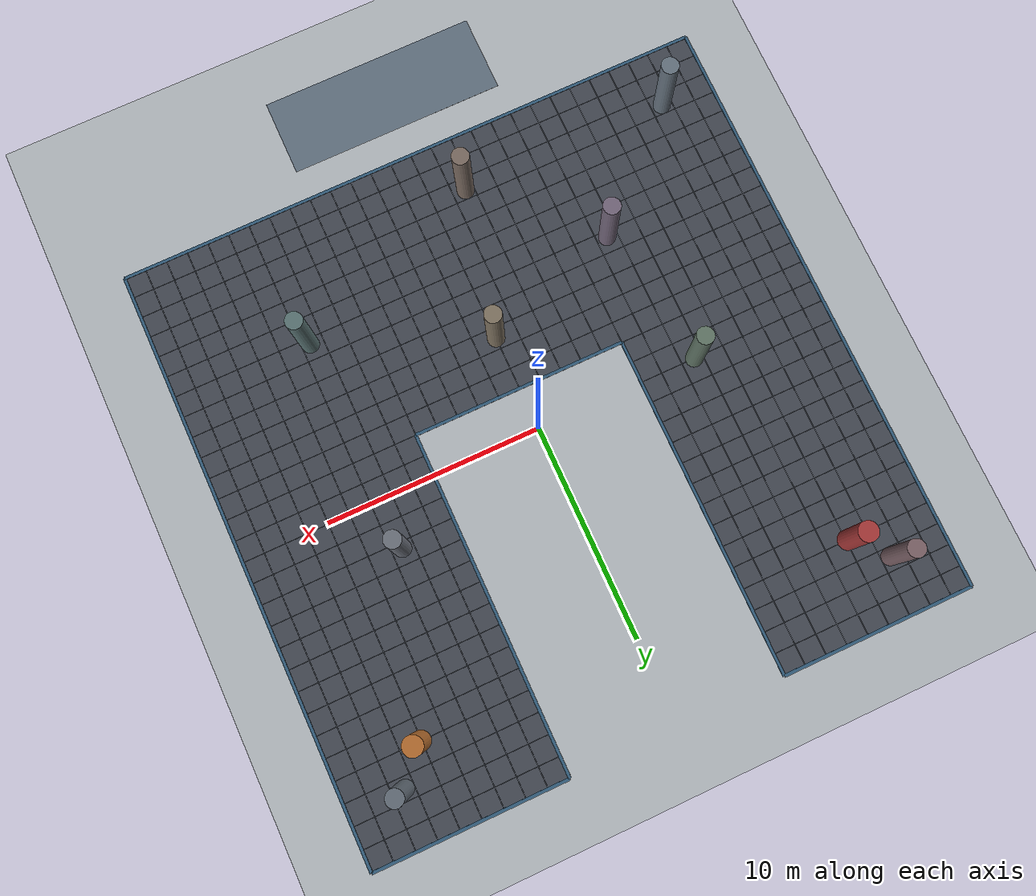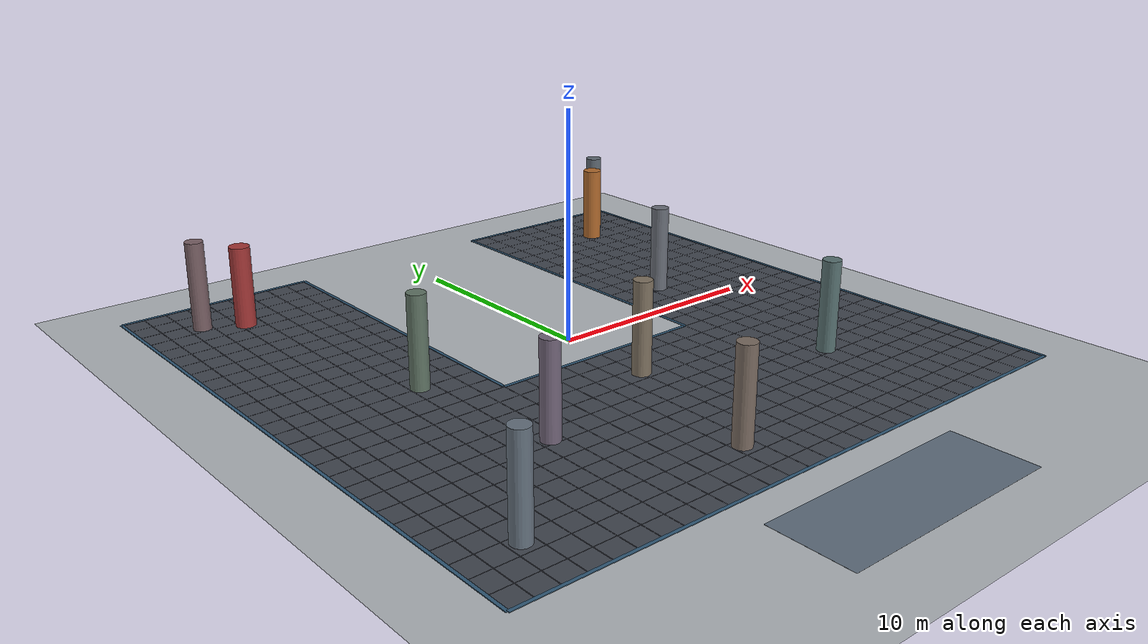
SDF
<?xml version="1.0" ?>
<sdf version="1.8">
  <world name="swarm_world">
    <!-- SPEEDUP SIMULATION: max_step_size=0.001 (1000Hz stable physics) & real_time_factor=1.0 -->
    <physics name="fast_physics" type="ode">
      <max_step_size>0.001</max_step_size>
      <real_time_factor>1.0</real_time_factor>
    </physics>

    <!-- SCENE CONFIG: Muted Architectural Lighting & Background -->
    <scene>
      <ambient>0.62 0.62 0.65 1.0</ambient>
      <background>0.78 0.80 0.83 1.0</background>
      <shadows>true</shadows>
      <grid>false</grid>
    </scene>

    <!-- PLUGIN INTI GAZEBO HARMONIC -->
    <plugin
      filename="gz-sim-physics-system"
      name="gz::sim::systems::Physics">
    </plugin>
    <plugin
      filename="gz-sim-user-commands-system"
      name="gz::sim::systems::UserCommands">
    </plugin>
    <plugin
      filename="gz-sim-scene-broadcaster-system"
      name="gz::sim::systems::SceneBroadcaster">
    </plugin>
    <plugin
      filename="gz-sim-sensors-system"
      name="gz::sim::systems::Sensors">
      <render_engine>ogre2</render_engine>
    </plugin>
    <plugin
      filename="gz-sim-wind-effects-system"
      name="gz::sim::systems::WindEffects">
      <force_approximation_scaling_factor>0.25</force_approximation_scaling_factor>
    </plugin>

    <!-- MATAHARI (SUN) - Soft Balanced Illumination -->
    <light type="directional" name="sun">
      <cast_shadows>true</cast_shadows>
      <pose>0 0 30 0 0 0</pose>
      <diffuse>0.85 0.85 0.87 1</diffuse>
      <specular>0.2 0.2 0.2 1</specular>
      <attenuation>
        <range>1000</range>
        <constant>0.9</constant>
        <linear>0.01</linear>
        <quadratic>0.001</quadratic>
      </attenuation>
      <direction>-0.4 0.2 -0.9</direction>
    </light>

    <!-- LANTAI LUAR (NEUTRAL MATTE CONCRETE EXTERIOR) -->
    <model name="ground_plane">
      <static>true</static>
      <link name="link">
        <collision name="collision">
          <geometry>
            <plane>
              <normal>0 0 1</normal>
              <size>100 100</size>
            </plane>
          </geometry>
        </collision>
        <visual name="visual">
          <geometry>
            <plane>
              <normal>0 0 1</normal>
              <size>100 100</size>
            </plane>
          </geometry>
          <material>
            <ambient>0.70 0.72 0.74 1.0</ambient>
            <diffuse>0.70 0.72 0.74 1.0</diffuse>
            <specular>0.1 0.1 0.1 1.0</specular>
          </material>
        </visual>
      </link>
    </model>

    <!-- GUI TOP-VIEW CAMERA PRESET -->
    <gui fullscreen="0">
      <camera name="user_camera">
        <pose>0.0 0.0 38.0 0.0 1.5708 1.5708</pose>
        <view_controller>orbit</view_controller>
      </camera>
    </gui>

    <!-- STAGING PAD AREA (LANDASAN AWAL 7 DRONE DI Y = -18m) -->
    <model name="staging_pad">
      <static>true</static>
      <link name="pad_link">
        <visual name="pad_v">
          <pose>0.0 -17.25 0.003 0 0 0</pose>
          <geometry><box><size>10.0 3.5 0.005</size></box></geometry>
          <material>
            <ambient>0.26 0.28 0.32 1.0</ambient>
            <diffuse>0.26 0.28 0.32 1.0</diffuse>
          </material>
        </visual>
        <visual name="pad_border">
          <pose>0.0 -17.25 0.005 0 0 0</pose>
          <geometry><box><size>10.1 3.6 0.003</size></box></geometry>
          <material>
            <ambient>0.38 0.44 0.50 1.0</ambient>
            <diffuse>0.38 0.44 0.50 1.0</diffuse>
          </material>
        </visual>
      </link>
    </model>
    <!-- VISUAL LANTAI ARENA & BORDER WILAYAH U_SHAPE                           -->
    <model name="visual_region_floor_u_shape">
      <static>true</static>
      <link name="floor_link">
        <visual name="floor_box_0">
          <pose>0.0000 -8.0000 0.003 0 0 0</pose>
          <geometry><box><size>28.0000 12.0000 0.005</size></box></geometry>
          <material>
            <ambient>0.26 0.28 0.32 1.0</ambient>
            <diffuse>0.26 0.28 0.32 1.0</diffuse>
            <specular>0.15 0.15 0.15 1.0</specular>
          </material>
        </visual>
        <visual name="floor_box_1">
          <pose>-9.5000 6.0000 0.003 0 0 0</pose>
          <geometry><box><size>9.0000 16.0000 0.005</size></box></geometry>
          <material>
            <ambient>0.26 0.28 0.32 1.0</ambient>
            <diffuse>0.26 0.28 0.32 1.0</diffuse>
            <specular>0.15 0.15 0.15 1.0</specular>
          </material>
        </visual>
        <visual name="floor_box_2">
          <pose>9.5000 6.0000 0.003 0 0 0</pose>
          <geometry><box><size>9.0000 16.0000 0.005</size></box></geometry>
          <material>
            <ambient>0.26 0.28 0.32 1.0</ambient>
            <diffuse>0.26 0.28 0.32 1.0</diffuse>
            <specular>0.15 0.15 0.15 1.0</specular>
          </material>
        </visual>
        <visual name="grid_v_0">
          <pose>-14.00 -8.0000 0.005 0 0 0</pose>
          <geometry><box><size>0.025 12.0000 0.003</size></box></geometry>
          <material>
            <ambient>0.33 0.35 0.39 1.0</ambient>
            <diffuse>0.33 0.35 0.39 1.0</diffuse>
          </material>
        </visual>
        <visual name="grid_v_1">
          <pose>-13.00 -8.0000 0.005 0 0 0</pose>
          <geometry><box><size>0.025 12.0000 0.003</size></box></geometry>
          <material>
            <ambient>0.33 0.35 0.39 1.0</ambient>
            <diffuse>0.33 0.35 0.39 1.0</diffuse>
          </material>
        </visual>
        <visual name="grid_v_2">
          <pose>-12.00 -8.0000 0.005 0 0 0</pose>
          <geometry><box><size>0.025 12.0000 0.003</size></box></geometry>
          <material>
            <ambient>0.33 0.35 0.39 1.0</ambient>
            <diffuse>0.33 0.35 0.39 1.0</diffuse>
          </material>
        </visual>
        <visual name="grid_v_3">
          <pose>-11.00 -8.0000 0.005 0 0 0</pose>
          <geometry><box><size>0.025 12.0000 0.003</size></box></geometry>
          <material>
            <ambient>0.33 0.35 0.39 1.0</ambient>
            <diffuse>0.33 0.35 0.39 1.0</diffuse>
          </material>
        </visual>
        <visual name="grid_v_4">
          <pose>-10.00 -8.0000 0.005 0 0 0</pose>
          <geometry><box><size>0.025 12.0000 0.003</size></box></geometry>
          <material>
            <ambient>0.33 0.35 0.39 1.0</ambient>
            <diffuse>0.33 0.35 0.39 1.0</diffuse>
          </material>
        </visual>
        <visual name="grid_v_5">
          <pose>-9.00 -8.0000 0.005 0 0 0</pose>
          <geometry><box><size>0.025 12.0000 0.003</size></box></geometry>
          <material>
            <ambient>0.33 0.35 0.39 1.0</ambient>
            <diffuse>0.33 0.35 0.39 1.0</diffuse>
          </material>
        </visual>
        <visual name="grid_v_6">
          <pose>-8.00 -8.0000 0.005 0 0 0</pose>
          <geometry><box><size>0.025 12.0000 0.003</size></box></geometry>
          <material>
            <ambient>0.33 0.35 0.39 1.0</ambient>
            <diffuse>0.33 0.35 0.39 1.0</diffuse>
          </material>
        </visual>
        <visual name="grid_v_7">
          <pose>-7.00 -8.0000 0.005 0 0 0</pose>
          <geometry><box><size>0.025 12.0000 0.003</size></box></geometry>
          <material>
            <ambient>0.33 0.35 0.39 1.0</ambient>
            <diffuse>0.33 0.35 0.39 1.0</diffuse>
          </material>
        </visual>
        <visual name="grid_v_8">
          <pose>-6.00 -8.0000 0.005 0 0 0</pose>
          <geometry><box><size>0.025 12.0000 0.003</size></box></geometry>
          <material>
            <ambient>0.33 0.35 0.39 1.0</ambient>
            <diffuse>0.33 0.35 0.39 1.0</diffuse>
          </material>
        </visual>
        <visual name="grid_v_9">
          <pose>-5.00 -8.0000 0.005 0 0 0</pose>
          <geometry><box><size>0.025 12.0000 0.003</size></box></geometry>
          <material>
            <ambient>0.33 0.35 0.39 1.0</ambient>
            <diffuse>0.33 0.35 0.39 1.0</diffuse>
          </material>
        </visual>
        <visual name="grid_v_10">
          <pose>-4.00 -8.0000 0.005 0 0 0</pose>
          <geometry><box><size>0.025 12.0000 0.003</size></box></geometry>
          <material>
            <ambient>0.33 0.35 0.39 1.0</ambient>
            <diffuse>0.33 0.35 0.39 1.0</diffuse>
          </material>
        </visual>
        <visual name="grid_v_11">
          <pose>-3.00 -8.0000 0.005 0 0 0</pose>
          <geometry><box><size>0.025 12.0000 0.003</size></box></geometry>
          <material>
            <ambient>0.33 0.35 0.39 1.0</ambient>
            <diffuse>0.33 0.35 0.39 1.0</diffuse>
          </material>
        </visual>
        <visual name="grid_v_12">
          <pose>-2.00 -8.0000 0.005 0 0 0</pose>
          <geometry><box><size>0.025 12.0000 0.003</size></box></geometry>
          <material>
            <ambient>0.33 0.35 0.39 1.0</ambient>
            <diffuse>0.33 0.35 0.39 1.0</diffuse>
          </material>
        </visual>
        <visual name="grid_v_13">
          <pose>-1.00 -8.0000 0.005 0 0 0</pose>
          <geometry><box><size>0.025 12.0000 0.003</size></box></geometry>
          <material>
            <ambient>0.33 0.35 0.39 1.0</ambient>
            <diffuse>0.33 0.35 0.39 1.0</diffuse>
          </material>
        </visual>
        <visual name="grid_v_14">
          <pose>0.00 -8.0000 0.005 0 0 0</pose>
          <geometry><box><size>0.025 12.0000 0.003</size></box></geometry>
          <material>
            <ambient>0.33 0.35 0.39 1.0</ambient>
            <diffuse>0.33 0.35 0.39 1.0</diffuse>
          </material>
        </visual>
        <visual name="grid_v_15">
          <pose>1.00 -8.0000 0.005 0 0 0</pose>
          <geometry><box><size>0.025 12.0000 0.003</size></box></geometry>
          <material>
            <ambient>0.33 0.35 0.39 1.0</ambient>
            <diffuse>0.33 0.35 0.39 1.0</diffuse>
          </material>
        </visual>
        <visual name="grid_v_16">
          <pose>2.00 -8.0000 0.005 0 0 0</pose>
          <geometry><box><size>0.025 12.0000 0.003</size></box></geometry>
          <material>
            <ambient>0.33 0.35 0.39 1.0</ambient>
            <diffuse>0.33 0.35 0.39 1.0</diffuse>
          </material>
        </visual>
        <visual name="grid_v_17">
          <pose>3.00 -8.0000 0.005 0 0 0</pose>
          <geometry><box><size>0.025 12.0000 0.003</size></box></geometry>
          <material>
            <ambient>0.33 0.35 0.39 1.0</ambient>
            <diffuse>0.33 0.35 0.39 1.0</diffuse>
          </material>
        </visual>
        <visual name="grid_v_18">
          <pose>4.00 -8.0000 0.005 0 0 0</pose>
          <geometry><box><size>0.025 12.0000 0.003</size></box></geometry>
          <material>
            <ambient>0.33 0.35 0.39 1.0</ambient>
            <diffuse>0.33 0.35 0.39 1.0</diffuse>
          </material>
        </visual>
        <visual name="grid_v_19">
          <pose>5.00 -8.0000 0.005 0 0 0</pose>
          <geometry><box><size>0.025 12.0000 0.003</size></box></geometry>
          <material>
            <ambient>0.33 0.35 0.39 1.0</ambient>
            <diffuse>0.33 0.35 0.39 1.0</diffuse>
          </material>
        </visual>
        <visual name="grid_v_20">
          <pose>6.00 -8.0000 0.005 0 0 0</pose>
          <geometry><box><size>0.025 12.0000 0.003</size></box></geometry>
          <material>
            <ambient>0.33 0.35 0.39 1.0</ambient>
            <diffuse>0.33 0.35 0.39 1.0</diffuse>
          </material>
        </visual>
        <visual name="grid_v_21">
          <pose>7.00 -8.0000 0.005 0 0 0</pose>
          <geometry><box><size>0.025 12.0000 0.003</size></box></geometry>
          <material>
            <ambient>0.33 0.35 0.39 1.0</ambient>
            <diffuse>0.33 0.35 0.39 1.0</diffuse>
          </material>
        </visual>
        <visual name="grid_v_22">
          <pose>8.00 -8.0000 0.005 0 0 0</pose>
          <geometry><box><size>0.025 12.0000 0.003</size></box></geometry>
          <material>
            <ambient>0.33 0.35 0.39 1.0</ambient>
            <diffuse>0.33 0.35 0.39 1.0</diffuse>
          </material>
        </visual>
        <visual name="grid_v_23">
          <pose>9.00 -8.0000 0.005 0 0 0</pose>
          <geometry><box><size>0.025 12.0000 0.003</size></box></geometry>
          <material>
            <ambient>0.33 0.35 0.39 1.0</ambient>
            <diffuse>0.33 0.35 0.39 1.0</diffuse>
          </material>
        </visual>
        <visual name="grid_v_24">
          <pose>10.00 -8.0000 0.005 0 0 0</pose>
          <geometry><box><size>0.025 12.0000 0.003</size></box></geometry>
          <material>
            <ambient>0.33 0.35 0.39 1.0</ambient>
            <diffuse>0.33 0.35 0.39 1.0</diffuse>
          </material>
        </visual>
        <visual name="grid_v_25">
          <pose>11.00 -8.0000 0.005 0 0 0</pose>
          <geometry><box><size>0.025 12.0000 0.003</size></box></geometry>
          <material>
            <ambient>0.33 0.35 0.39 1.0</ambient>
            <diffuse>0.33 0.35 0.39 1.0</diffuse>
          </material>
        </visual>
        <visual name="grid_v_26">
          <pose>12.00 -8.0000 0.005 0 0 0</pose>
          <geometry><box><size>0.025 12.0000 0.003</size></box></geometry>
          <material>
            <ambient>0.33 0.35 0.39 1.0</ambient>
            <diffuse>0.33 0.35 0.39 1.0</diffuse>
          </material>
        </visual>
        <visual name="grid_v_27">
          <pose>13.00 -8.0000 0.005 0 0 0</pose>
          <geometry><box><size>0.025 12.0000 0.003</size></box></geometry>
          <material>
            <ambient>0.33 0.35 0.39 1.0</ambient>
            <diffuse>0.33 0.35 0.39 1.0</diffuse>
          </material>
        </visual>
        <visual name="grid_v_28">
          <pose>14.00 -8.0000 0.005 0 0 0</pose>
          <geometry><box><size>0.025 12.0000 0.003</size></box></geometry>
          <material>
            <ambient>0.33 0.35 0.39 1.0</ambient>
            <diffuse>0.33 0.35 0.39 1.0</diffuse>
          </material>
        </visual>
        <visual name="grid_h_29">
          <pose>0.0000 -14.00 0.005 0 0 0</pose>
          <geometry><box><size>28.0000 0.025 0.003</size></box></geometry>
          <material>
            <ambient>0.33 0.35 0.39 1.0</ambient>
            <diffuse>0.33 0.35 0.39 1.0</diffuse>
          </material>
        </visual>
        <visual name="grid_h_30">
          <pose>0.0000 -13.00 0.005 0 0 0</pose>
          <geometry><box><size>28.0000 0.025 0.003</size></box></geometry>
          <material>
            <ambient>0.33 0.35 0.39 1.0</ambient>
            <diffuse>0.33 0.35 0.39 1.0</diffuse>
          </material>
        </visual>
        <visual name="grid_h_31">
          <pose>0.0000 -12.00 0.005 0 0 0</pose>
          <geometry><box><size>28.0000 0.025 0.003</size></box></geometry>
          <material>
            <ambient>0.33 0.35 0.39 1.0</ambient>
            <diffuse>0.33 0.35 0.39 1.0</diffuse>
          </material>
        </visual>
        <visual name="grid_h_32">
          <pose>0.0000 -11.00 0.005 0 0 0</pose>
          <geometry><box><size>28.0000 0.025 0.003</size></box></geometry>
          <material>
            <ambient>0.33 0.35 0.39 1.0</ambient>
            <diffuse>0.33 0.35 0.39 1.0</diffuse>
          </material>
        </visual>
        <visual name="grid_h_33">
          <pose>0.0000 -10.00 0.005 0 0 0</pose>
          <geometry><box><size>28.0000 0.025 0.003</size></box></geometry>
          <material>
            <ambient>0.33 0.35 0.39 1.0</ambient>
            <diffuse>0.33 0.35 0.39 1.0</diffuse>
          </material>
        </visual>
        <visual name="grid_h_34">
          <pose>0.0000 -9.00 0.005 0 0 0</pose>
          <geometry><box><size>28.0000 0.025 0.003</size></box></geometry>
          <material>
            <ambient>0.33 0.35 0.39 1.0</ambient>
            <diffuse>0.33 0.35 0.39 1.0</diffuse>
          </material>
        </visual>
        <visual name="grid_h_35">
          <pose>0.0000 -8.00 0.005 0 0 0</pose>
          <geometry><box><size>28.0000 0.025 0.003</size></box></geometry>
          <material>
            <ambient>0.33 0.35 0.39 1.0</ambient>
            <diffuse>0.33 0.35 0.39 1.0</diffuse>
          </material>
        </visual>
        <visual name="grid_h_36">
          <pose>0.0000 -7.00 0.005 0 0 0</pose>
          <geometry><box><size>28.0000 0.025 0.003</size></box></geometry>
          <material>
            <ambient>0.33 0.35 0.39 1.0</ambient>
            <diffuse>0.33 0.35 0.39 1.0</diffuse>
          </material>
        </visual>
        <visual name="grid_h_37">
          <pose>0.0000 -6.00 0.005 0 0 0</pose>
          <geometry><box><size>28.0000 0.025 0.003</size></box></geometry>
          <material>
            <ambient>0.33 0.35 0.39 1.0</ambient>
            <diffuse>0.33 0.35 0.39 1.0</diffuse>
          </material>
        </visual>
        <visual name="grid_h_38">
          <pose>0.0000 -5.00 0.005 0 0 0</pose>
          <geometry><box><size>28.0000 0.025 0.003</size></box></geometry>
          <material>
            <ambient>0.33 0.35 0.39 1.0</ambient>
            <diffuse>0.33 0.35 0.39 1.0</diffuse>
          </material>
        </visual>
        <visual name="grid_h_39">
          <pose>0.0000 -4.00 0.005 0 0 0</pose>
          <geometry><box><size>28.0000 0.025 0.003</size></box></geometry>
          <material>
            <ambient>0.33 0.35 0.39 1.0</ambient>
            <diffuse>0.33 0.35 0.39 1.0</diffuse>
          </material>
        </visual>
        <visual name="grid_h_40">
          <pose>0.0000 -3.00 0.005 0 0 0</pose>
          <geometry><box><size>28.0000 0.025 0.003</size></box></geometry>
          <material>
            <ambient>0.33 0.35 0.39 1.0</ambient>
            <diffuse>0.33 0.35 0.39 1.0</diffuse>
          </material>
        </visual>
        <visual name="grid_h_41">
          <pose>0.0000 -2.00 0.005 0 0 0</pose>
          <geometry><box><size>28.0000 0.025 0.003</size></box></geometry>
          <material>
            <ambient>0.33 0.35 0.39 1.0</ambient>
            <diffuse>0.33 0.35 0.39 1.0</diffuse>
          </material>
        </visual>
        <visual name="grid_v_42">
          <pose>-14.00 6.0000 0.005 0 0 0</pose>
          <geometry><box><size>0.025 16.0000 0.003</size></box></geometry>
          <material>
            <ambient>0.33 0.35 0.39 1.0</ambient>
            <diffuse>0.33 0.35 0.39 1.0</diffuse>
          </material>
        </visual>
        <visual name="grid_v_43">
          <pose>-13.00 6.0000 0.005 0 0 0</pose>
          <geometry><box><size>0.025 16.0000 0.003</size></box></geometry>
          <material>
            <ambient>0.33 0.35 0.39 1.0</ambient>
            <diffuse>0.33 0.35 0.39 1.0</diffuse>
          </material>
        </visual>
        <visual name="grid_v_44">
          <pose>-12.00 6.0000 0.005 0 0 0</pose>
          <geometry><box><size>0.025 16.0000 0.003</size></box></geometry>
          <material>
            <ambient>0.33 0.35 0.39 1.0</ambient>
            <diffuse>0.33 0.35 0.39 1.0</diffuse>
          </material>
        </visual>
        <visual name="grid_v_45">
          <pose>-11.00 6.0000 0.005 0 0 0</pose>
          <geometry><box><size>0.025 16.0000 0.003</size></box></geometry>
          <material>
            <ambient>0.33 0.35 0.39 1.0</ambient>
            <diffuse>0.33 0.35 0.39 1.0</diffuse>
          </material>
        </visual>
        <visual name="grid_v_46">
          <pose>-10.00 6.0000 0.005 0 0 0</pose>
          <geometry><box><size>0.025 16.0000 0.003</size></box></geometry>
          <material>
            <ambient>0.33 0.35 0.39 1.0</ambient>
            <diffuse>0.33 0.35 0.39 1.0</diffuse>
          </material>
        </visual>
        <visual name="grid_v_47">
          <pose>-9.00 6.0000 0.005 0 0 0</pose>
          <geometry><box><size>0.025 16.0000 0.003</size></box></geometry>
          <material>
            <ambient>0.33 0.35 0.39 1.0</ambient>
            <diffuse>0.33 0.35 0.39 1.0</diffuse>
          </material>
        </visual>
        <visual name="grid_v_48">
          <pose>-8.00 6.0000 0.005 0 0 0</pose>
          <geometry><box><size>0.025 16.0000 0.003</size></box></geometry>
          <material>
            <ambient>0.33 0.35 0.39 1.0</ambient>
            <diffuse>0.33 0.35 0.39 1.0</diffuse>
          </material>
        </visual>
        <visual name="grid_v_49">
          <pose>-7.00 6.0000 0.005 0 0 0</pose>
          <geometry><box><size>0.025 16.0000 0.003</size></box></geometry>
          <material>
            <ambient>0.33 0.35 0.39 1.0</ambient>
            <diffuse>0.33 0.35 0.39 1.0</diffuse>
          </material>
        </visual>
        <visual name="grid_v_50">
          <pose>-6.00 6.0000 0.005 0 0 0</pose>
          <geometry><box><size>0.025 16.0000 0.003</size></box></geometry>
          <material>
            <ambient>0.33 0.35 0.39 1.0</ambient>
            <diffuse>0.33 0.35 0.39 1.0</diffuse>
          </material>
        </visual>
        <visual name="grid_v_51">
          <pose>-5.00 6.0000 0.005 0 0 0</pose>
          <geometry><box><size>0.025 16.0000 0.003</size></box></geometry>
          <material>
            <ambient>0.33 0.35 0.39 1.0</ambient>
            <diffuse>0.33 0.35 0.39 1.0</diffuse>
          </material>
        </visual>
        <visual name="grid_h_52">
          <pose>-9.5000 -2.00 0.005 0 0 0</pose>
          <geometry><box><size>9.0000 0.025 0.003</size></box></geometry>
          <material>
            <ambient>0.33 0.35 0.39 1.0</ambient>
            <diffuse>0.33 0.35 0.39 1.0</diffuse>
          </material>
        </visual>
        <visual name="grid_h_53">
          <pose>-9.5000 -1.00 0.005 0 0 0</pose>
          <geometry><box><size>9.0000 0.025 0.003</size></box></geometry>
          <material>
            <ambient>0.33 0.35 0.39 1.0</ambient>
            <diffuse>0.33 0.35 0.39 1.0</diffuse>
          </material>
        </visual>
        <visual name="grid_h_54">
          <pose>-9.5000 0.00 0.005 0 0 0</pose>
          <geometry><box><size>9.0000 0.025 0.003</size></box></geometry>
          <material>
            <ambient>0.33 0.35 0.39 1.0</ambient>
            <diffuse>0.33 0.35 0.39 1.0</diffuse>
          </material>
        </visual>
        <visual name="grid_h_55">
          <pose>-9.5000 1.00 0.005 0 0 0</pose>
          <geometry><box><size>9.0000 0.025 0.003</size></box></geometry>
          <material>
            <ambient>0.33 0.35 0.39 1.0</ambient>
            <diffuse>0.33 0.35 0.39 1.0</diffuse>
          </material>
        </visual>
        <visual name="grid_h_56">
          <pose>-9.5000 2.00 0.005 0 0 0</pose>
          <geometry><box><size>9.0000 0.025 0.003</size></box></geometry>
          <material>
            <ambient>0.33 0.35 0.39 1.0</ambient>
            <diffuse>0.33 0.35 0.39 1.0</diffuse>
          </material>
        </visual>
        <visual name="grid_h_57">
          <pose>-9.5000 3.00 0.005 0 0 0</pose>
          <geometry><box><size>9.0000 0.025 0.003</size></box></geometry>
          <material>
            <ambient>0.33 0.35 0.39 1.0</ambient>
            <diffuse>0.33 0.35 0.39 1.0</diffuse>
          </material>
        </visual>
        <visual name="grid_h_58">
          <pose>-9.5000 4.00 0.005 0 0 0</pose>
          <geometry><box><size>9.0000 0.025 0.003</size></box></geometry>
          <material>
            <ambient>0.33 0.35 0.39 1.0</ambient>
            <diffuse>0.33 0.35 0.39 1.0</diffuse>
          </material>
        </visual>
        <visual name="grid_h_59">
          <pose>-9.5000 5.00 0.005 0 0 0</pose>
          <geometry><box><size>9.0000 0.025 0.003</size></box></geometry>
          <material>
            <ambient>0.33 0.35 0.39 1.0</ambient>
            <diffuse>0.33 0.35 0.39 1.0</diffuse>
          </material>
        </visual>
        <visual name="grid_h_60">
          <pose>-9.5000 6.00 0.005 0 0 0</pose>
          <geometry><box><size>9.0000 0.025 0.003</size></box></geometry>
          <material>
            <ambient>0.33 0.35 0.39 1.0</ambient>
            <diffuse>0.33 0.35 0.39 1.0</diffuse>
          </material>
        </visual>
        <visual name="grid_h_61">
          <pose>-9.5000 7.00 0.005 0 0 0</pose>
          <geometry><box><size>9.0000 0.025 0.003</size></box></geometry>
          <material>
            <ambient>0.33 0.35 0.39 1.0</ambient>
            <diffuse>0.33 0.35 0.39 1.0</diffuse>
          </material>
        </visual>
        <visual name="grid_h_62">
          <pose>-9.5000 8.00 0.005 0 0 0</pose>
          <geometry><box><size>9.0000 0.025 0.003</size></box></geometry>
          <material>
            <ambient>0.33 0.35 0.39 1.0</ambient>
            <diffuse>0.33 0.35 0.39 1.0</diffuse>
          </material>
        </visual>
        <visual name="grid_h_63">
          <pose>-9.5000 9.00 0.005 0 0 0</pose>
          <geometry><box><size>9.0000 0.025 0.003</size></box></geometry>
          <material>
            <ambient>0.33 0.35 0.39 1.0</ambient>
            <diffuse>0.33 0.35 0.39 1.0</diffuse>
          </material>
        </visual>
        <visual name="grid_h_64">
          <pose>-9.5000 10.00 0.005 0 0 0</pose>
          <geometry><box><size>9.0000 0.025 0.003</size></box></geometry>
          <material>
            <ambient>0.33 0.35 0.39 1.0</ambient>
            <diffuse>0.33 0.35 0.39 1.0</diffuse>
          </material>
        </visual>
        <visual name="grid_h_65">
          <pose>-9.5000 11.00 0.005 0 0 0</pose>
          <geometry><box><size>9.0000 0.025 0.003</size></box></geometry>
          <material>
            <ambient>0.33 0.35 0.39 1.0</ambient>
            <diffuse>0.33 0.35 0.39 1.0</diffuse>
          </material>
        </visual>
        <visual name="grid_h_66">
          <pose>-9.5000 12.00 0.005 0 0 0</pose>
          <geometry><box><size>9.0000 0.025 0.003</size></box></geometry>
          <material>
            <ambient>0.33 0.35 0.39 1.0</ambient>
            <diffuse>0.33 0.35 0.39 1.0</diffuse>
          </material>
        </visual>
        <visual name="grid_h_67">
          <pose>-9.5000 13.00 0.005 0 0 0</pose>
          <geometry><box><size>9.0000 0.025 0.003</size></box></geometry>
          <material>
            <ambient>0.33 0.35 0.39 1.0</ambient>
            <diffuse>0.33 0.35 0.39 1.0</diffuse>
          </material>
        </visual>
        <visual name="grid_h_68">
          <pose>-9.5000 14.00 0.005 0 0 0</pose>
          <geometry><box><size>9.0000 0.025 0.003</size></box></geometry>
          <material>
            <ambient>0.33 0.35 0.39 1.0</ambient>
            <diffuse>0.33 0.35 0.39 1.0</diffuse>
          </material>
        </visual>
        <visual name="grid_v_69">
          <pose>5.00 6.0000 0.005 0 0 0</pose>
          <geometry><box><size>0.025 16.0000 0.003</size></box></geometry>
          <material>
            <ambient>0.33 0.35 0.39 1.0</ambient>
            <diffuse>0.33 0.35 0.39 1.0</diffuse>
          </material>
        </visual>
        <visual name="grid_v_70">
          <pose>6.00 6.0000 0.005 0 0 0</pose>
          <geometry><box><size>0.025 16.0000 0.003</size></box></geometry>
          <material>
            <ambient>0.33 0.35 0.39 1.0</ambient>
            <diffuse>0.33 0.35 0.39 1.0</diffuse>
          </material>
        </visual>
        <visual name="grid_v_71">
          <pose>7.00 6.0000 0.005 0 0 0</pose>
          <geometry><box><size>0.025 16.0000 0.003</size></box></geometry>
          <material>
            <ambient>0.33 0.35 0.39 1.0</ambient>
            <diffuse>0.33 0.35 0.39 1.0</diffuse>
          </material>
        </visual>
        <visual name="grid_v_72">
          <pose>8.00 6.0000 0.005 0 0 0</pose>
          <geometry><box><size>0.025 16.0000 0.003</size></box></geometry>
          <material>
            <ambient>0.33 0.35 0.39 1.0</ambient>
            <diffuse>0.33 0.35 0.39 1.0</diffuse>
          </material>
        </visual>
        <visual name="grid_v_73">
          <pose>9.00 6.0000 0.005 0 0 0</pose>
          <geometry><box><size>0.025 16.0000 0.003</size></box></geometry>
          <material>
            <ambient>0.33 0.35 0.39 1.0</ambient>
            <diffuse>0.33 0.35 0.39 1.0</diffuse>
          </material>
        </visual>
        <visual name="grid_v_74">
          <pose>10.00 6.0000 0.005 0 0 0</pose>
          <geometry><box><size>0.025 16.0000 0.003</size></box></geometry>
          <material>
            <ambient>0.33 0.35 0.39 1.0</ambient>
            <diffuse>0.33 0.35 0.39 1.0</diffuse>
          </material>
        </visual>
        <visual name="grid_v_75">
          <pose>11.00 6.0000 0.005 0 0 0</pose>
          <geometry><box><size>0.025 16.0000 0.003</size></box></geometry>
          <material>
            <ambient>0.33 0.35 0.39 1.0</ambient>
            <diffuse>0.33 0.35 0.39 1.0</diffuse>
          </material>
        </visual>
        <visual name="grid_v_76">
          <pose>12.00 6.0000 0.005 0 0 0</pose>
          <geometry><box><size>0.025 16.0000 0.003</size></box></geometry>
          <material>
            <ambient>0.33 0.35 0.39 1.0</ambient>
            <diffuse>0.33 0.35 0.39 1.0</diffuse>
          </material>
        </visual>
        <visual name="grid_v_77">
          <pose>13.00 6.0000 0.005 0 0 0</pose>
          <geometry><box><size>0.025 16.0000 0.003</size></box></geometry>
          <material>
            <ambient>0.33 0.35 0.39 1.0</ambient>
            <diffuse>0.33 0.35 0.39 1.0</diffuse>
          </material>
        </visual>
        <visual name="grid_v_78">
          <pose>14.00 6.0000 0.005 0 0 0</pose>
          <geometry><box><size>0.025 16.0000 0.003</size></box></geometry>
          <material>
            <ambient>0.33 0.35 0.39 1.0</ambient>
            <diffuse>0.33 0.35 0.39 1.0</diffuse>
          </material>
        </visual>
        <visual name="grid_h_79">
          <pose>9.5000 -2.00 0.005 0 0 0</pose>
          <geometry><box><size>9.0000 0.025 0.003</size></box></geometry>
          <material>
            <ambient>0.33 0.35 0.39 1.0</ambient>
            <diffuse>0.33 0.35 0.39 1.0</diffuse>
          </material>
        </visual>
        <visual name="grid_h_80">
          <pose>9.5000 -1.00 0.005 0 0 0</pose>
          <geometry><box><size>9.0000 0.025 0.003</size></box></geometry>
          <material>
            <ambient>0.33 0.35 0.39 1.0</ambient>
            <diffuse>0.33 0.35 0.39 1.0</diffuse>
          </material>
        </visual>
        <visual name="grid_h_81">
          <pose>9.5000 0.00 0.005 0 0 0</pose>
          <geometry><box><size>9.0000 0.025 0.003</size></box></geometry>
          <material>
            <ambient>0.33 0.35 0.39 1.0</ambient>
            <diffuse>0.33 0.35 0.39 1.0</diffuse>
          </material>
        </visual>
        <visual name="grid_h_82">
          <pose>9.5000 1.00 0.005 0 0 0</pose>
          <geometry><box><size>9.0000 0.025 0.003</size></box></geometry>
          <material>
            <ambient>0.33 0.35 0.39 1.0</ambient>
            <diffuse>0.33 0.35 0.39 1.0</diffuse>
          </material>
        </visual>
        <visual name="grid_h_83">
          <pose>9.5000 2.00 0.005 0 0 0</pose>
          <geometry><box><size>9.0000 0.025 0.003</size></box></geometry>
          <material>
            <ambient>0.33 0.35 0.39 1.0</ambient>
            <diffuse>0.33 0.35 0.39 1.0</diffuse>
          </material>
        </visual>
        <visual name="grid_h_84">
          <pose>9.5000 3.00 0.005 0 0 0</pose>
          <geometry><box><size>9.0000 0.025 0.003</size></box></geometry>
          <material>
            <ambient>0.33 0.35 0.39 1.0</ambient>
            <diffuse>0.33 0.35 0.39 1.0</diffuse>
          </material>
        </visual>
        <visual name="grid_h_85">
          <pose>9.5000 4.00 0.005 0 0 0</pose>
          <geometry><box><size>9.0000 0.025 0.003</size></box></geometry>
          <material>
            <ambient>0.33 0.35 0.39 1.0</ambient>
            <diffuse>0.33 0.35 0.39 1.0</diffuse>
          </material>
        </visual>
        <visual name="grid_h_86">
          <pose>9.5000 5.00 0.005 0 0 0</pose>
          <geometry><box><size>9.0000 0.025 0.003</size></box></geometry>
          <material>
            <ambient>0.33 0.35 0.39 1.0</ambient>
            <diffuse>0.33 0.35 0.39 1.0</diffuse>
          </material>
        </visual>
        <visual name="grid_h_87">
          <pose>9.5000 6.00 0.005 0 0 0</pose>
          <geometry><box><size>9.0000 0.025 0.003</size></box></geometry>
          <material>
            <ambient>0.33 0.35 0.39 1.0</ambient>
            <diffuse>0.33 0.35 0.39 1.0</diffuse>
          </material>
        </visual>
        <visual name="grid_h_88">
          <pose>9.5000 7.00 0.005 0 0 0</pose>
          <geometry><box><size>9.0000 0.025 0.003</size></box></geometry>
          <material>
            <ambient>0.33 0.35 0.39 1.0</ambient>
            <diffuse>0.33 0.35 0.39 1.0</diffuse>
          </material>
        </visual>
        <visual name="grid_h_89">
          <pose>9.5000 8.00 0.005 0 0 0</pose>
          <geometry><box><size>9.0000 0.025 0.003</size></box></geometry>
          <material>
            <ambient>0.33 0.35 0.39 1.0</ambient>
            <diffuse>0.33 0.35 0.39 1.0</diffuse>
          </material>
        </visual>
        <visual name="grid_h_90">
          <pose>9.5000 9.00 0.005 0 0 0</pose>
          <geometry><box><size>9.0000 0.025 0.003</size></box></geometry>
          <material>
            <ambient>0.33 0.35 0.39 1.0</ambient>
            <diffuse>0.33 0.35 0.39 1.0</diffuse>
          </material>
        </visual>
        <visual name="grid_h_91">
          <pose>9.5000 10.00 0.005 0 0 0</pose>
          <geometry><box><size>9.0000 0.025 0.003</size></box></geometry>
          <material>
            <ambient>0.33 0.35 0.39 1.0</ambient>
            <diffuse>0.33 0.35 0.39 1.0</diffuse>
          </material>
        </visual>
        <visual name="grid_h_92">
          <pose>9.5000 11.00 0.005 0 0 0</pose>
          <geometry><box><size>9.0000 0.025 0.003</size></box></geometry>
          <material>
            <ambient>0.33 0.35 0.39 1.0</ambient>
            <diffuse>0.33 0.35 0.39 1.0</diffuse>
          </material>
        </visual>
        <visual name="grid_h_93">
          <pose>9.5000 12.00 0.005 0 0 0</pose>
          <geometry><box><size>9.0000 0.025 0.003</size></box></geometry>
          <material>
            <ambient>0.33 0.35 0.39 1.0</ambient>
            <diffuse>0.33 0.35 0.39 1.0</diffuse>
          </material>
        </visual>
        <visual name="grid_h_94">
          <pose>9.5000 13.00 0.005 0 0 0</pose>
          <geometry><box><size>9.0000 0.025 0.003</size></box></geometry>
          <material>
            <ambient>0.33 0.35 0.39 1.0</ambient>
            <diffuse>0.33 0.35 0.39 1.0</diffuse>
          </material>
        </visual>
        <visual name="grid_h_95">
          <pose>9.5000 14.00 0.005 0 0 0</pose>
          <geometry><box><size>9.0000 0.025 0.003</size></box></geometry>
          <material>
            <ambient>0.33 0.35 0.39 1.0</ambient>
            <diffuse>0.33 0.35 0.39 1.0</diffuse>
          </material>
        </visual>
      </link>
    </model>

    <!-- BORDER PEMBATAS KELILING (MUTED STEEL BLUE / SLATE CURB) -->
    <model name="region_perimeter_border_u_shape">
      <static>true</static>
      <link name="border_link">
        <visual name="border_edge_0">
          <pose>0.0000 -14.0000 0.015 0 0 0.0000</pose>
          <geometry><box><size>28.0000 0.14 0.025</size></box></geometry>
          <material>
            <ambient>0.20 0.36 0.48 1.0</ambient>
            <diffuse>0.20 0.36 0.48 1.0</diffuse>
            <specular>0.25 0.25 0.25 1.0</specular>
          </material>
        </visual>
        <visual name="border_edge_1">
          <pose>14.0000 0.0000 0.015 0 0 1.5708</pose>
          <geometry><box><size>28.0000 0.14 0.025</size></box></geometry>
          <material>
            <ambient>0.20 0.36 0.48 1.0</ambient>
            <diffuse>0.20 0.36 0.48 1.0</diffuse>
            <specular>0.25 0.25 0.25 1.0</specular>
          </material>
        </visual>
        <visual name="border_edge_2">
          <pose>9.5000 14.0000 0.015 0 0 3.1416</pose>
          <geometry><box><size>9.0000 0.14 0.025</size></box></geometry>
          <material>
            <ambient>0.20 0.36 0.48 1.0</ambient>
            <diffuse>0.20 0.36 0.48 1.0</diffuse>
            <specular>0.25 0.25 0.25 1.0</specular>
          </material>
        </visual>
        <visual name="border_edge_3">
          <pose>5.0000 6.0000 0.015 0 0 -1.5708</pose>
          <geometry><box><size>16.0000 0.14 0.025</size></box></geometry>
          <material>
            <ambient>0.20 0.36 0.48 1.0</ambient>
            <diffuse>0.20 0.36 0.48 1.0</diffuse>
            <specular>0.25 0.25 0.25 1.0</specular>
          </material>
        </visual>
        <visual name="border_edge_4">
          <pose>0.0000 -2.0000 0.015 0 0 3.1416</pose>
          <geometry><box><size>10.0000 0.14 0.025</size></box></geometry>
          <material>
            <ambient>0.20 0.36 0.48 1.0</ambient>
            <diffuse>0.20 0.36 0.48 1.0</diffuse>
            <specular>0.25 0.25 0.25 1.0</specular>
          </material>
        </visual>
        <visual name="border_edge_5">
          <pose>-5.0000 6.0000 0.015 0 0 1.5708</pose>
          <geometry><box><size>16.0000 0.14 0.025</size></box></geometry>
          <material>
            <ambient>0.20 0.36 0.48 1.0</ambient>
            <diffuse>0.20 0.36 0.48 1.0</diffuse>
            <specular>0.25 0.25 0.25 1.0</specular>
          </material>
        </visual>
        <visual name="border_edge_6">
          <pose>-9.5000 14.0000 0.015 0 0 3.1416</pose>
          <geometry><box><size>9.0000 0.14 0.025</size></box></geometry>
          <material>
            <ambient>0.20 0.36 0.48 1.0</ambient>
            <diffuse>0.20 0.36 0.48 1.0</diffuse>
            <specular>0.25 0.25 0.25 1.0</specular>
          </material>
        </visual>
        <visual name="border_edge_7">
          <pose>-14.0000 0.0000 0.015 0 0 -1.5708</pose>
          <geometry><box><size>28.0000 0.14 0.025</size></box></geometry>
          <material>
            <ambient>0.20 0.36 0.48 1.0</ambient>
            <diffuse>0.20 0.36 0.48 1.0</diffuse>
            <specular>0.25 0.25 0.25 1.0</specular>
          </material>
        </visual>
      </link>
    </model>
    <model name="static_obs_301">
      <static>true</static>
      <pose>-11.5000 -11.4000 2.0000 0 0 0</pose>
      <link name="link">
        <collision name="collision">
          <geometry><cylinder><radius>0.4000</radius><length>4.0000</length></cylinder></geometry>
        </collision>
        <visual name="visual">
          <geometry><cylinder><radius>0.4000</radius><length>4.0000</length></cylinder></geometry>
          <material>
            <ambient>0.40 0.45 0.50 1.0</ambient>
            <diffuse>0.40 0.45 0.50 1.0</diffuse>
            <specular>0.3 0.3 0.3 1.0</specular>
          </material>
        </visual>
      </link>
    </model>

    <model name="static_obs_302">
      <static>true</static>
      <pose>-1.6000 -11.4000 2.0000 0 0 0</pose>
      <link name="link">
        <collision name="collision">
          <geometry><cylinder><radius>0.4000</radius><length>4.0000</length></cylinder></geometry>
        </collision>
        <visual name="visual">
          <geometry><cylinder><radius>0.4000</radius><length>4.0000</length></cylinder></geometry>
          <material>
            <ambient>0.48 0.42 0.38 1.0</ambient>
            <diffuse>0.48 0.42 0.38 1.0</diffuse>
            <specular>0.3 0.3 0.3 1.0</specular>
          </material>
        </visual>
      </link>
    </model>

    <model name="static_obs_303">
      <static>true</static>
      <pose>7.6000 -7.7000 2.0000 0 0 0</pose>
      <link name="link">
        <collision name="collision">
          <geometry><cylinder><radius>0.4000</radius><length>4.0000</length></cylinder></geometry>
        </collision>
        <visual name="visual">
          <geometry><cylinder><radius>0.4000</radius><length>4.0000</length></cylinder></geometry>
          <material>
            <ambient>0.35 0.45 0.45 1.0</ambient>
            <diffuse>0.35 0.45 0.45 1.0</diffuse>
            <specular>0.3 0.3 0.3 1.0</specular>
          </material>
        </visual>
      </link>
    </model>

    <model name="static_obs_304">
      <static>true</static>
      <pose>-6.5000 -6.7000 2.0000 0 0 0</pose>
      <link name="link">
        <collision name="collision">
          <geometry><cylinder><radius>0.4000</radius><length>4.0000</length></cylinder></geometry>
        </collision>
        <visual name="visual">
          <geometry><cylinder><radius>0.4000</radius><length>4.0000</length></cylinder></geometry>
          <material>
            <ambient>0.45 0.40 0.48 1.0</ambient>
            <diffuse>0.45 0.40 0.48 1.0</diffuse>
            <specular>0.3 0.3 0.3 1.0</specular>
          </material>
        </visual>
      </link>
    </model>

    <model name="static_obs_305">
      <static>true</static>
      <pose>0.0000 -4.5000 2.0000 0 0 0</pose>
      <link name="link">
        <collision name="collision">
          <geometry><cylinder><radius>0.4000</radius><length>4.0000</length></cylinder></geometry>
        </collision>
        <visual name="visual">
          <geometry><cylinder><radius>0.4000</radius><length>4.0000</length></cylinder></geometry>
          <material>
            <ambient>0.50 0.45 0.38 1.0</ambient>
            <diffuse>0.50 0.45 0.38 1.0</diffuse>
            <specular>0.3 0.3 0.3 1.0</specular>
          </material>
        </visual>
      </link>
    </model>

    <model name="static_obs_306">
      <static>true</static>
      <pose>-7.6000 0.0000 2.0000 0 0 0</pose>
      <link name="link">
        <collision name="collision">
          <geometry><cylinder><radius>0.4000</radius><length>4.0000</length></cylinder></geometry>
        </collision>
        <visual name="visual">
          <geometry><cylinder><radius>0.4000</radius><length>4.0000</length></cylinder></geometry>
          <material>
            <ambient>0.38 0.46 0.40 1.0</ambient>
            <diffuse>0.38 0.46 0.40 1.0</diffuse>
            <specular>0.3 0.3 0.3 1.0</specular>
          </material>
        </visual>
      </link>
    </model>

    <model name="static_obs_307">
      <static>true</static>
      <pose>7.5000 2.3000 2.0000 0 0 0</pose>
      <link name="link">
        <collision name="collision">
          <geometry><cylinder><radius>0.4000</radius><length>4.0000</length></cylinder></geometry>
        </collision>
        <visual name="visual">
          <geometry><cylinder><radius>0.4000</radius><length>4.0000</length></cylinder></geometry>
          <material>
            <ambient>0.42 0.44 0.48 1.0</ambient>
            <diffuse>0.42 0.44 0.48 1.0</diffuse>
            <specular>0.3 0.3 0.3 1.0</specular>
          </material>
        </visual>
      </link>
    </model>

    <model name="static_obs_308">
      <static>true</static>
      <pose>-11.4000 11.4000 2.0000 0 0 0</pose>
      <link name="link">
        <collision name="collision">
          <geometry><cylinder><radius>0.4000</radius><length>4.0000</length></cylinder></geometry>
        </collision>
        <visual name="visual">
          <geometry><cylinder><radius>0.4000</radius><length>4.0000</length></cylinder></geometry>
          <material>
            <ambient>0.48 0.38 0.40 1.0</ambient>
            <diffuse>0.48 0.38 0.40 1.0</diffuse>
            <specular>0.3 0.3 0.3 1.0</specular>
          </material>
        </visual>
      </link>
    </model>

    <model name="static_obs_309">
      <static>true</static>
      <pose>11.4000 11.5000 2.0000 0 0 0</pose>
      <link name="link">
        <collision name="collision">
          <geometry><cylinder><radius>0.4000</radius><length>4.0000</length></cylinder></geometry>
        </collision>
        <visual name="visual">
          <geometry><cylinder><radius>0.4000</radius><length>4.0000</length></cylinder></geometry>
          <material>
            <ambient>0.38 0.42 0.46 1.0</ambient>
            <diffuse>0.38 0.42 0.46 1.0</diffuse>
            <specular>0.3 0.3 0.3 1.0</specular>
          </material>
        </visual>
      </link>
    </model>
\
    <!-- 2 RINTANGAN DINAMIS (DYNAMIC MOVING OBSTACLES) POLA SILANG "X"       -->
    <!-- Warna Muted Industrial Hazard: Dark Crimson & Warm Amber              -->
    <model name="dynamic_obs_1">
      <static>false</static>
      <pose>-10.0 10.0 2.05 0 0 0</pose>
      <link name="link">
        <gravity>false</gravity>
        <kinematic>true</kinematic>
        <inertial>
          <mass>10.0</mass>
          <inertia>
            <ixx>1.0</ixx><ixy>0</ixy><ixz>0</ixz>
            <iyy>1.0</iyy><iyz>0</iyz><izz>1.0</izz>
          </inertia>
        </inertial>
        <collision name="collision">
          <geometry><cylinder><radius>0.45</radius><length>3.6</length></cylinder></geometry>
        </collision>
        <visual name="visual">
          <geometry><cylinder><radius>0.45</radius><length>3.6</length></cylinder></geometry>
          <material>
            <ambient>0.65 0.22 0.22 1.0</ambient>
            <diffuse>0.65 0.22 0.22 1.0</diffuse>
            <specular>0.4 0.4 0.4 1.0</specular>
          </material>
        </visual>
      </link>
      <plugin
        filename="gz-sim-velocity-control-system"
        name="gz::sim::systems::VelocityControl">
      </plugin>
      <plugin
        filename="gz-sim-odometry-publisher-system"
        name="gz::sim::systems::OdometryPublisher">
        <odom_frame>world</odom_frame>
        <robot_base_frame>link</robot_base_frame>
        <odom_publish_frequency>50</odom_publish_frequency>
        <odom_topic>/model/dynamic_obs_1/odometry</odom_topic>
      </plugin>
    </model>

    <model name="dynamic_obs_2">
      <static>false</static>
      <pose>10.0 10.0 2.05 0 0 0</pose>
      <link name="link">
        <gravity>false</gravity>
        <kinematic>true</kinematic>
        <inertial>
          <mass>10.0</mass>
          <inertia>
            <ixx>1.0</ixx><ixy>0</ixy><ixz>0</ixz>
            <iyy>1.0</iyy><iyz>0</iyz><izz>1.0</izz>
          </inertia>
        </inertial>
        <collision name="collision">
          <geometry><cylinder><radius>0.45</radius><length>3.6</length></cylinder></geometry>
        </collision>
        <visual name="visual">
          <geometry><cylinder><radius>0.45</radius><length>3.6</length></cylinder></geometry>
          <material>
            <ambient>0.70 0.42 0.18 1.0</ambient>
            <diffuse>0.70 0.42 0.18 1.0</diffuse>
            <specular>0.4 0.4 0.4 1.0</specular>
          </material>
        </visual>
      </link>
      <plugin
        filename="gz-sim-velocity-control-system"
        name="gz::sim::systems::VelocityControl">
      </plugin>
      <plugin
        filename="gz-sim-odometry-publisher-system"
        name="gz::sim::systems::OdometryPublisher">
        <odom_frame>world</odom_frame>
        <robot_base_frame>link</robot_base_frame>
        <odom_publish_frequency>50</odom_publish_frequency>
        <odom_topic>/model/dynamic_obs_2/odometry</odom_topic>
      </plugin>
    </model>
  </world>
</sdf>
